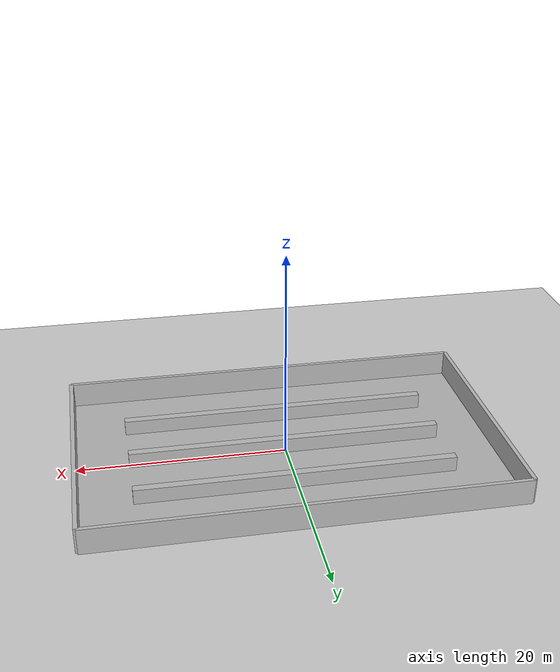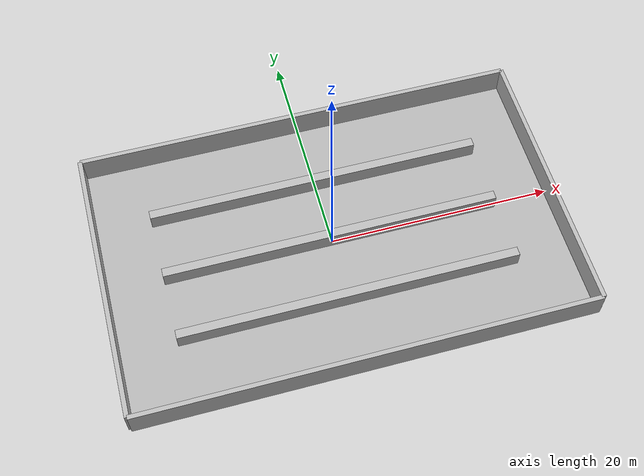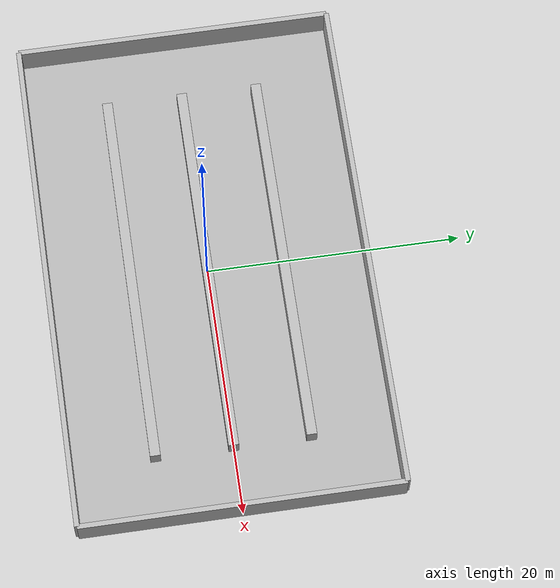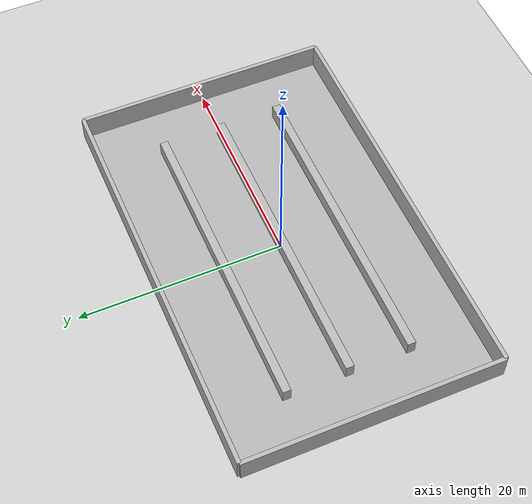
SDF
<?xml version="1.0"?>
<sdf version="1.6">
  <world name="warehouse_minimal">

    <gui fullscreen="0">
        <camera name="user_camera">
            <pose>-18 -10 4 0 0.6 0</pose>
            <view_controller>orbit</view_controller>
            <projection_type>perspective</projection_type>

            <track_visual>
                <name>tb3</name>
                <static>false</static>
                <use_model_frame>true</use_model_frame>
                <inherit_yaw>false</inherit_yaw>
                <xyz>-3 0 2</xyz>
                <min_dist>1</min_dist>
                <max_dist>8</max_dist>
            </track_visual>
        </camera>
    </gui>

    <!-- Light + physics -->
    <include>
      <uri>model://sun</uri>
    </include>
    <include>
      <uri>model://ground_plane</uri>
    </include>

    <!-- Floor (optional visual reference) -->
    <model name="floor_mark">
      <static>true</static>
      <link name="link">
        <collision name="col">
          <geometry>
            <box><size>40 25 0.05</size></box>
          </geometry>
        </collision>
        <visual name="vis">
          <geometry>
            <box><size>40 25 0.05</size></box>
          </geometry>
          <material>
            <ambient>0.7 0.7 0.7 1</ambient>
            <diffuse>0.7 0.7 0.7 1</diffuse>
          </material>
        </visual>
        <pose>0 0 0.025 0 0 0</pose>
      </link>
    </model>

    <!-- Walls (closed warehouse box) -->
    <!-- North wall -->
    <model name="wall_n">
      <static>true</static>
      <link name="link">
        <collision name="col"><geometry><box><size>40 0.4 2.5</size></box></geometry></collision>
        <visual name="vis"><geometry><box><size>40 0.4 2.5</size></box></geometry></visual>
        <pose>0 12.5 1.25 0 0 0</pose>
      </link>
    </model>

    <!-- South wall -->
    <model name="wall_s">
      <static>true</static>
      <link name="link">
        <collision name="col"><geometry><box><size>40 0.4 2.5</size></box></geometry></collision>
        <visual name="vis"><geometry><box><size>40 0.4 2.5</size></box></geometry></visual>
        <pose>0 -12.5 1.25 0 0 0</pose>
      </link>
    </model>

    <!-- East wall -->
    <model name="wall_e">
      <static>true</static>
      <link name="link">
        <collision name="col"><geometry><box><size>0.4 25 2.5</size></box></geometry></collision>
        <visual name="vis"><geometry><box><size>0.4 25 2.5</size></box></geometry></visual>
        <pose>20 0 1.25 0 0 0</pose>
      </link>
    </model>

    <!-- West wall -->
    <model name="wall_w">
      <static>true</static>
      <link name="link">
        <collision name="col"><geometry><box><size>0.4 25 2.5</size></box></geometry></collision>
        <visual name="vis"><geometry><box><size>0.4 25 2.5</size></box></geometry></visual>
        <pose>-20 0 1.25 0 0 0</pose>
      </link>
    </model>

    <!-- Shelves: simple long boxes forming aisles -->
    <model name="shelf_row_1">
      <static>true</static>
      <link name="link">
        <collision name="col"><geometry><box><size>30 0.8 1.5</size></box></geometry></collision>
        <visual name="vis"><geometry><box><size>30 0.8 1.5</size></box></geometry></visual>
        <pose>0 6 0.75 0 0 0</pose>
      </link>
    </model>

    <model name="shelf_row_2">
      <static>true</static>
      <link name="link">
        <collision name="col"><geometry><box><size>30 0.8 1.5</size></box></geometry></collision>
        <visual name="vis"><geometry><box><size>30 0.8 1.5</size></box></geometry></visual>
        <pose>0 0 0.75 0 0 0</pose>
      </link>
    </model>

    <model name="shelf_row_3">
      <static>true</static>
      <link name="link">
        <collision name="col"><geometry><box><size>30 0.8 1.5</size></box></geometry></collision>
        <visual name="vis"><geometry><box><size>30 0.8 1.5</size></box></geometry></visual>
        <pose>0 -6 0.75 0 0 0</pose>
      </link>
    </model>

    <!-- Open “loading zone” marker (no collision, only visual) -->
    <model name="loading_zone">
      <static>true</static>
      <link name="link">
        <visual name="vis">
          <geometry><box><size>4 4 0.02</size></box></geometry>
          <material>
            <ambient>0.1 0.8 0.1 1</ambient>
            <diffuse>0.1 0.8 0.1 1</diffuse>
          </material>
        </visual>
        <pose>-16 -10 0.02 0 0 0</pose>
      </link>
    </model>

  </world>
</sdf>
